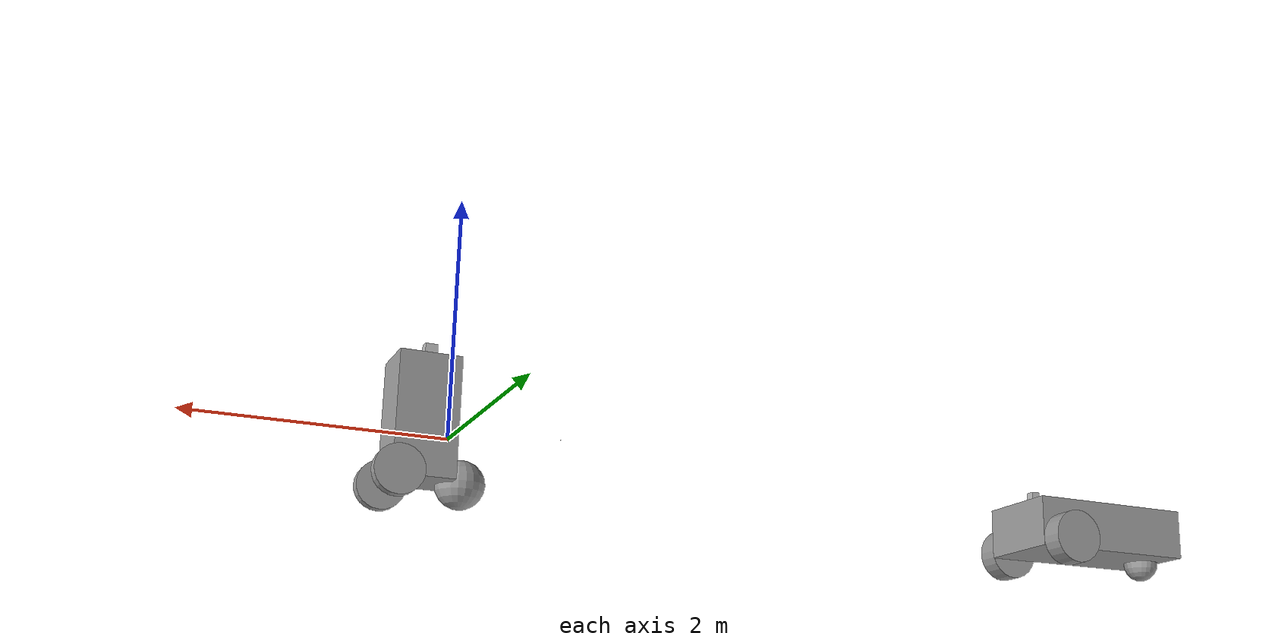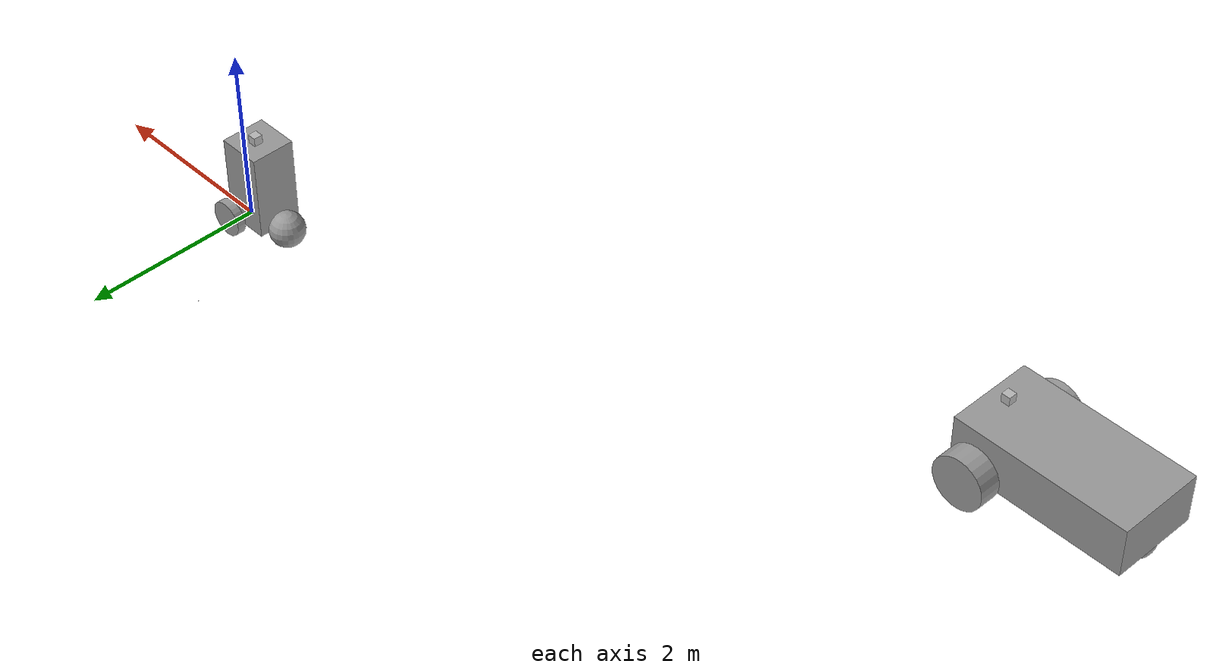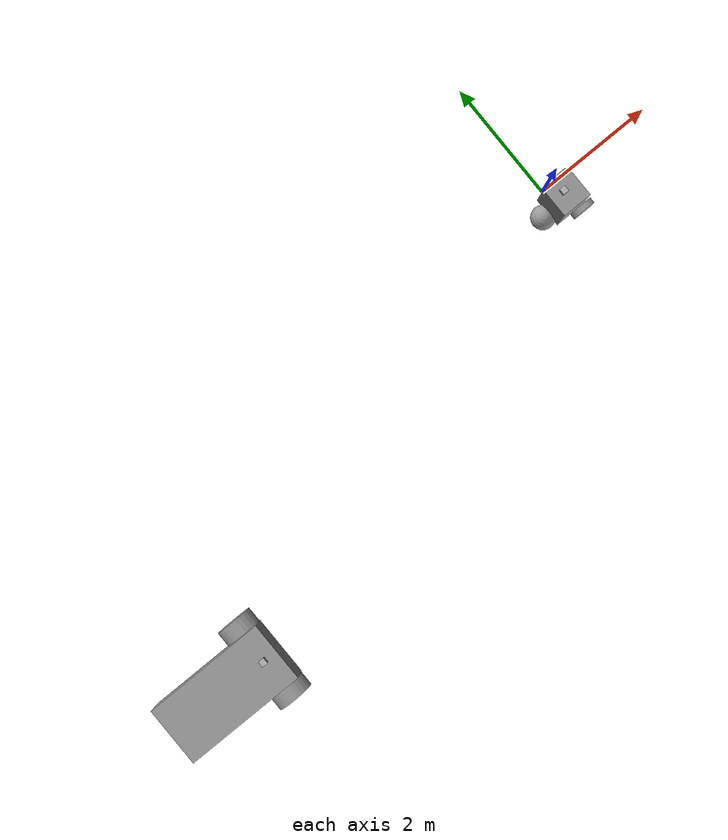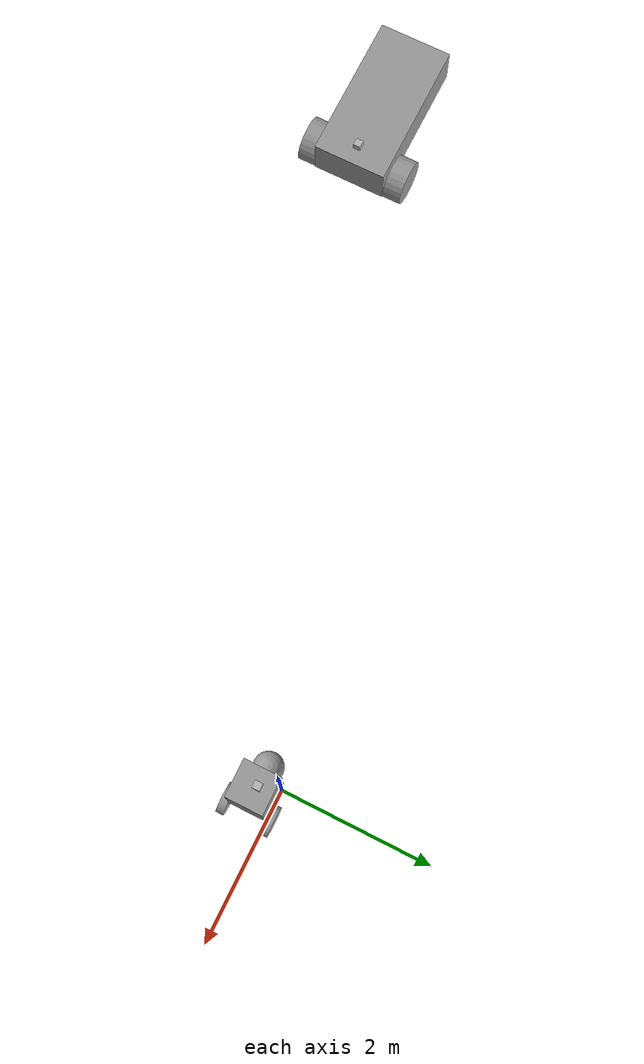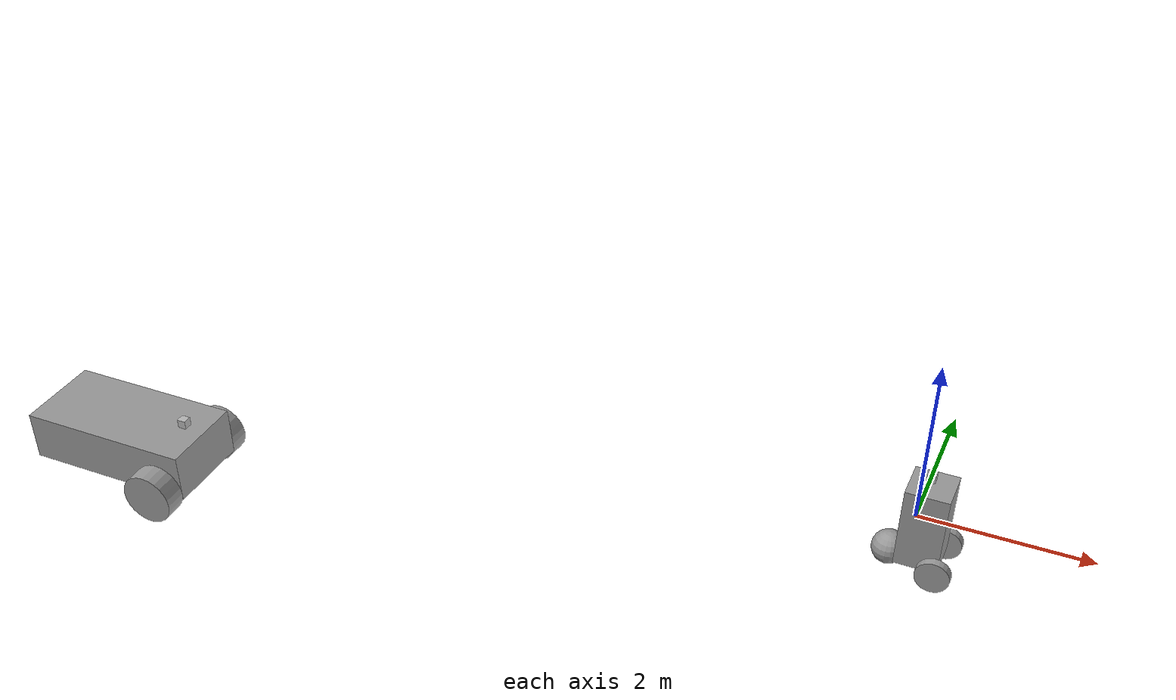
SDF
<?xml version='1.0'?>
<sdf version='1.6'>
  <model name='model'>
    <link name='link_0'>
      <pose frame=''>0.15772 -0.278982 0.2 0 -0 0</pose>
      <inertial>
        <mass>0.5</mass>
        <inertia>
          <ixx>0.166667</ixx>
          <ixy>0</ixy>
          <ixz>0</ixz>
          <iyy>0.166667</iyy>
          <iyz>0</iyz>
          <izz>0.166667</izz>
        </inertia>
        <pose frame=''>0 0 0 0 -0 0</pose>
      </inertial>
      <self_collide>0</self_collide>
      <kinematic>0</kinematic>
      <visual name='visual'>
        <pose frame=''>0 0 0 0 -0 0</pose>
        <geometry>
          <box>
            <size>0.5 0.5 1</size>
          </box>
        </geometry>
        <material>
          <lighting>1</lighting>
          <script>
            <uri>file://media/materials/scripts/gazebo.material</uri>
            <name>Gazebo/Grey</name>
          </script>
          <shader type='pixel'>
            <normal_map>__default__</normal_map>
          </shader>
          <ambient>0.3 0.3 0.3 1</ambient>
          <diffuse>0.7 0.7 0.7 1</diffuse>
          <specular>0.01 0.01 0.01 1</specular>
          <emissive>0 0 0 1</emissive>
        </material>
        <transparency>0</transparency>
        <cast_shadows>1</cast_shadows>
      </visual>
      <collision name='collision'>
        <laser_retro>0</laser_retro>
        <max_contacts>10</max_contacts>
        <pose frame=''>0 0 0 0 -0 0</pose>
        <geometry>
          <box>
            <size>0.5 0.5 1</size>
          </box>
        </geometry>
        <surface>
          <friction>
            <ode>
              <mu>1</mu>
              <mu2>1</mu2>
              <fdir1>0 0 0</fdir1>
              <slip1>0</slip1>
              <slip2>0</slip2>
            </ode>
            <torsional>
              <coefficient>1</coefficient>
              <patch_radius>0</patch_radius>
              <surface_radius>0</surface_radius>
              <use_patch_radius>1</use_patch_radius>
              <ode>
                <slip>0</slip>
              </ode>
            </torsional>
          </friction>
          <bounce>
            <restitution_coefficient>0</restitution_coefficient>
            <threshold>1e+06</threshold>
          </bounce>
          <contact>
            <collide_without_contact>0</collide_without_contact>
            <collide_without_contact_bitmask>1</collide_without_contact_bitmask>
            <collide_bitmask>1</collide_bitmask>
            <ode>
              <soft_cfm>0</soft_cfm>
              <soft_erp>0.2</soft_erp>
              <kp>1e+13</kp>
              <kd>1</kd>
              <max_vel>0.01</max_vel>
              <min_depth>0</min_depth>
            </ode>
            <bullet>
              <split_impulse>1</split_impulse>
              <split_impulse_penetration_threshold>-0.01</split_impulse_penetration_threshold>
              <soft_cfm>0</soft_cfm>
              <soft_erp>0.2</soft_erp>
              <kp>1e+13</kp>
              <kd>1</kd>
            </bullet>
          </contact>
        </surface>
      </collision>
    </link>
    <link name='link_1'>
      <pose frame=''>0.372993 -0.57726 -0.290529 1.5707 -0 0</pose>
      <inertial>
        <mass>1</mass>
        <inertia>
          <ixx>0.145833</ixx>
          <ixy>0</ixy>
          <ixz>0</ixz>
          <iyy>0.145833</iyy>
          <iyz>0</iyz>
          <izz>0.125</izz>
        </inertia>
        <pose frame=''>0 0 0.2 1.5707 -0 0</pose>
      </inertial>
      <self_collide>0</self_collide>
      <kinematic>0</kinematic>
      <visual name='visual'>
        <pose frame=''>0 0 0 0 -0 0</pose>
        <geometry>
          <cylinder>
            <radius>0.2</radius>
            <length>0.1</length>
          </cylinder>
        </geometry>
        <material>
          <lighting>1</lighting>
          <script>
            <uri>file://media/materials/scripts/gazebo.material</uri>
            <name>Gazebo/Grey</name>
          </script>
          <shader type='pixel'>
            <normal_map>__default__</normal_map>
          </shader>
          <ambient>0.3 0.3 0.3 1</ambient>
          <diffuse>0.7 0.7 0.7 1</diffuse>
          <specular>0.01 0.01 0.01 1</specular>
          <emissive>0 0 0 1</emissive>
        </material>
        <transparency>0</transparency>
        <cast_shadows>1</cast_shadows>
      </visual>
      <collision name='collision'>
        <laser_retro>0</laser_retro>
        <max_contacts>10</max_contacts>
        <pose frame=''>0 0 0 0 -0 0</pose>
        <geometry>
          <cylinder>
            <radius>0.2</radius>
            <length>0.1</length>
          </cylinder>
        </geometry>
        <surface>
          <friction>
            <ode>
              <mu>1</mu>
              <mu2>1</mu2>
              <fdir1>0 0 0</fdir1>
              <slip1>0</slip1>
              <slip2>0</slip2>
            </ode>
            <torsional>
              <coefficient>1</coefficient>
              <patch_radius>0</patch_radius>
              <surface_radius>0</surface_radius>
              <use_patch_radius>1</use_patch_radius>
              <ode>
                <slip>0</slip>
              </ode>
            </torsional>
          </friction>
          <bounce>
            <restitution_coefficient>0</restitution_coefficient>
            <threshold>1e+06</threshold>
          </bounce>
          <contact>
            <collide_without_contact>0</collide_without_contact>
            <collide_without_contact_bitmask>1</collide_without_contact_bitmask>
            <collide_bitmask>1</collide_bitmask>
            <ode>
              <soft_cfm>0</soft_cfm>
              <soft_erp>0.2</soft_erp>
              <kp>1e+13</kp>
              <kd>1</kd>
              <max_vel>0.01</max_vel>
              <min_depth>0</min_depth>
            </ode>
            <bullet>
              <split_impulse>1</split_impulse>
              <split_impulse_penetration_threshold>-0.01</split_impulse_penetration_threshold>
              <soft_cfm>0</soft_cfm>
              <soft_erp>0.2</soft_erp>
              <kp>1e+13</kp>
              <kd>1</kd>
            </bullet>
          </contact>
        </surface>
      </collision>
    </link>
    <link name='link_1_clone'>
      <pose frame=''>0.371914 0.022779 -0.283781 1.5707 -0 0</pose>
      <inertial>
        <mass>1</mass>
        <inertia>
          <ixx>0.145833</ixx>
          <ixy>0</ixy>
          <ixz>0</ixz>
          <iyy>0.145833</iyy>
          <iyz>0</iyz>
          <izz>0.125</izz>
        </inertia>
        <pose frame=''>0 0 0.2 1.5707 -0 0</pose>
      </inertial>
      <self_collide>0</self_collide>
      <kinematic>0</kinematic>
      <visual name='visual'>
        <pose frame=''>0 0 0 0 -0 0</pose>
        <geometry>
          <cylinder>
            <radius>0.2</radius>
            <length>0.1</length>
          </cylinder>
        </geometry>
        <material>
          <lighting>1</lighting>
          <script>
            <uri>file://media/materials/scripts/gazebo.material</uri>
            <name>Gazebo/Grey</name>
          </script>
          <shader type='pixel'>
            <normal_map>__default__</normal_map>
          </shader>
          <ambient>0.3 0.3 0.3 1</ambient>
          <diffuse>0.7 0.7 0.7 1</diffuse>
          <specular>0.01 0.01 0.01 1</specular>
          <emissive>0 0 0 1</emissive>
        </material>
        <transparency>0</transparency>
        <cast_shadows>1</cast_shadows>
      </visual>
      <collision name='collision'>
        <laser_retro>0</laser_retro>
        <max_contacts>10</max_contacts>
        <pose frame=''>0 0 0 0 -0 0</pose>
        <geometry>
          <cylinder>
            <radius>0.2</radius>
            <length>0.1</length>
          </cylinder>
        </geometry>
        <surface>
          <friction>
            <ode>
              <mu>1</mu>
              <mu2>1</mu2>
              <fdir1>0 0 0</fdir1>
              <slip1>0</slip1>
              <slip2>0</slip2>
            </ode>
            <torsional>
              <coefficient>1</coefficient>
              <patch_radius>0</patch_radius>
              <surface_radius>0</surface_radius>
              <use_patch_radius>1</use_patch_radius>
              <ode>
                <slip>0</slip>
              </ode>
            </torsional>
          </friction>
          <bounce>
            <restitution_coefficient>0</restitution_coefficient>
            <threshold>1e+06</threshold>
          </bounce>
          <contact>
            <collide_without_contact>0</collide_without_contact>
            <collide_without_contact_bitmask>1</collide_without_contact_bitmask>
            <collide_bitmask>1</collide_bitmask>
            <ode>
              <soft_cfm>0</soft_cfm>
              <soft_erp>0.2</soft_erp>
              <kp>1e+13</kp>
              <kd>1</kd>
              <max_vel>0.01</max_vel>
              <min_depth>0</min_depth>
            </ode>
            <bullet>
              <split_impulse>1</split_impulse>
              <split_impulse_penetration_threshold>-0.01</split_impulse_penetration_threshold>
              <soft_cfm>0</soft_cfm>
              <soft_erp>0.2</soft_erp>
              <kp>1e+13</kp>
              <kd>1</kd>
            </bullet>
          </contact>
        </surface>
      </collision>
    </link>
    <link name='link_3'>
      <pose frame=''>-0.192844 -0.294498 -0.287262 0 -0 0</pose>
      <inertial>
        <mass>1</mass>
        <inertia>
          <ixx>0.1</ixx>
          <ixy>0</ixy>
          <ixz>0</ixz>
          <iyy>0.1</iyy>
          <iyz>0</iyz>
          <izz>0.1</izz>
        </inertia>
        <pose frame=''>0 0 0 0 -0 0</pose>
      </inertial>
      <self_collide>0</self_collide>
      <kinematic>0</kinematic>
      <visual name='visual'>
        <pose frame=''>0 0 0 0 -0 0</pose>
        <geometry>
          <sphere>
            <radius>0.2</radius>
          </sphere>
        </geometry>
        <material>
          <lighting>1</lighting>
          <script>
            <uri>file://media/materials/scripts/gazebo.material</uri>
            <name>Gazebo/Grey</name>
          </script>
          <shader type='pixel'>
            <normal_map>__default__</normal_map>
          </shader>
          <ambient>0.3 0.3 0.3 1</ambient>
          <diffuse>0.7 0.7 0.7 1</diffuse>
          <specular>0.01 0.01 0.01 1</specular>
          <emissive>0 0 0 1</emissive>
        </material>
        <transparency>0</transparency>
        <cast_shadows>1</cast_shadows>
      </visual>
      <collision name='collision'>
        <laser_retro>0</laser_retro>
        <max_contacts>10</max_contacts>
        <pose frame=''>0 0 0 0 -0 0</pose>
        <geometry>
          <sphere>
            <radius>0.2</radius>
          </sphere>
        </geometry>
        <surface>
          <friction>
            <ode>
              <mu>0</mu>
              <mu2>0</mu2>
              <fdir1>0 0 0</fdir1>
              <slip1>1</slip1>
              <slip2>1</slip2>
            </ode>
            <torsional>
              <coefficient>1</coefficient>
              <patch_radius>0</patch_radius>
              <surface_radius>0</surface_radius>
              <use_patch_radius>1</use_patch_radius>
              <ode>
                <slip>0</slip>
              </ode>
            </torsional>
          </friction>
          <bounce>
            <restitution_coefficient>0</restitution_coefficient>
            <threshold>1e+06</threshold>
          </bounce>
          <contact>
            <collide_without_contact>0</collide_without_contact>
            <collide_without_contact_bitmask>1</collide_without_contact_bitmask>
            <collide_bitmask>1</collide_bitmask>
            <ode>
              <soft_cfm>0</soft_cfm>
              <soft_erp>0.2</soft_erp>
              <kp>1e+13</kp>
              <kd>1</kd>
              <max_vel>0.01</max_vel>
              <min_depth>0</min_depth>
            </ode>
            <bullet>
              <split_impulse>1</split_impulse>
              <split_impulse_penetration_threshold>-0.01</split_impulse_penetration_threshold>
              <soft_cfm>0</soft_cfm>
              <soft_erp>0.2</soft_erp>
              <kp>1e+13</kp>
              <kd>1</kd>
            </bullet>
          </contact>
        </surface>
      </collision>
    </link>
    <model name='follower_vehicle'>
      <pose frame=''>-8.3727 -2.83927 0.302602 0 -0 0</pose>
      <link name='chassis'>
        <pose frame=''>-0.151427 -0 0.175 0 -0 0</pose>
        <inertial>
          <mass>1.14395</mass>
          <inertia>
            <ixx>0.126164</ixx>
            <ixy>0</ixy>
            <ixz>0</ixz>
            <iyy>0.416519</iyy>
            <iyz>0</iyz>
            <izz>0.481014</izz>
          </inertia>
          <pose frame=''>0 0 0 0 -0 0</pose>
        </inertial>
        <self_collide>0</self_collide>
        <visual name='visual'>
          <pose frame=''>0 0 0 0 -0 0</pose>
          <geometry>
            <box>
              <size>2.01142 1 0.568726</size>
            </box>
          </geometry>
          <material>
            <script>
              <uri>file://media/materials/scripts/gazebo.material</uri>
              <name>Gazebo/Grey</name>
            </script>
          </material>
          <cast_shadows>1</cast_shadows>
          <transparency>0</transparency>
        </visual>
        <collision name='collision'>
          <pose frame=''>0 0 0 0 -0 0</pose>
          <geometry>
            <box>
              <size>2.01142 1 0.568726</size>
            </box>
          </geometry>
          <surface>
            <friction>
              <ode>
                <mu>1</mu>
                <mu2>1</mu2>
                <fdir1>0 0 0</fdir1>
                <slip1>0</slip1>
                <slip2>0</slip2>
              </ode>
            </friction>
            <bounce>
              <restitution_coefficient>0</restitution_coefficient>
              <threshold>1e+06</threshold>
            </bounce>
            <contact>
              <collide_without_contact>0</collide_without_contact>
              <collide_without_contact_bitmask>1</collide_without_contact_bitmask>
              <collide_bitmask>1</collide_bitmask>
              <ode>
                <soft_cfm>0</soft_cfm>
                <soft_erp>0.2</soft_erp>
                <kp>1e+13</kp>
                <kd>1</kd>
                <max_vel>0.01</max_vel>
                <min_depth>0</min_depth>
              </ode>
            </contact>
          </surface>
        </collision>
      </link>
      <link name='wheel_1'>
        <pose frame=''>0.554283 0.625029 -0.025 1.5707 -0 0</pose>
        <inertial>
          <mass>2</mass>
          <inertia>
            <ixx>0.145833</ixx>
            <ixy>0</ixy>
            <ixz>0</ixz>
            <iyy>0.145833</iyy>
            <iyz>0</iyz>
            <izz>0.125</izz>
          </inertia>
          <pose frame=''>0 0 0 0 -0 0</pose>
        </inertial>
        <self_collide>0</self_collide>
        <visual name='visual'>
          <pose frame=''>0 0 0 0 -0 0</pose>
          <geometry>
            <cylinder>
              <radius>0.3</radius>
              <length>0.25</length>
            </cylinder>
          </geometry>
          <material>
            <script>
              <uri>file://media/materials/scripts/gazebo.material</uri>
              <name>Gazebo/Grey</name>
            </script>
          </material>
          <cast_shadows>1</cast_shadows>
          <transparency>0</transparency>
        </visual>
        <collision name='collision'>
          <pose frame=''>0 0 0 0 -0 0</pose>
          <geometry>
            <cylinder>
              <radius>0.3</radius>
              <length>0.25</length>
            </cylinder>
          </geometry>
          <surface>
            <friction>
              <ode>
                <mu>1</mu>
                <mu2>1</mu2>
                <fdir1>0 0 0</fdir1>
                <slip1>0</slip1>
                <slip2>0</slip2>
              </ode>
            </friction>
            <bounce>
              <restitution_coefficient>0</restitution_coefficient>
              <threshold>1e+06</threshold>
            </bounce>
            <contact>
              <collide_without_contact>0</collide_without_contact>
              <collide_without_contact_bitmask>1</collide_without_contact_bitmask>
              <collide_bitmask>1</collide_bitmask>
              <ode>
                <soft_cfm>0</soft_cfm>
                <soft_erp>0.2</soft_erp>
                <kp>1e+13</kp>
                <kd>1</kd>
                <max_vel>0.01</max_vel>
                <min_depth>0</min_depth>
              </ode>
            </contact>
          </surface>
        </collision>
      </link>
      <link name='wheel_2'>
        <pose frame=''>0.554282 -0.625029 -0.025 1.5707 -0 0</pose>
        <inertial>
          <mass>2</mass>
          <inertia>
            <ixx>0.145833</ixx>
            <ixy>0</ixy>
            <ixz>0</ixz>
            <iyy>0.145833</iyy>
            <iyz>0</iyz>
            <izz>0.125</izz>
          </inertia>
          <pose frame=''>0 0 0 0 -0 0</pose>
        </inertial>
        <self_collide>0</self_collide>
        <visual name='visual'>
          <pose frame=''>0 0 0 0 -0 0</pose>
          <geometry>
            <cylinder>
              <radius>0.3</radius>
              <length>0.25</length>
            </cylinder>
          </geometry>
          <material>
            <script>
              <uri>file://media/materials/scripts/gazebo.material</uri>
              <name>Gazebo/Grey</name>
            </script>
          </material>
          <cast_shadows>1</cast_shadows>
          <transparency>0</transparency>
        </visual>
        <collision name='collision'>
          <pose frame=''>0 0 0 0 -0 0</pose>
          <geometry>
            <cylinder>
              <radius>0.3</radius>
              <length>0.25</length>
            </cylinder>
          </geometry>
          <surface>
            <friction>
              <ode>
                <mu>1</mu>
                <mu2>1</mu2>
                <fdir1>0 0 0</fdir1>
                <slip1>0</slip1>
                <slip2>0</slip2>
              </ode>
            </friction>
            <bounce>
              <restitution_coefficient>0</restitution_coefficient>
              <threshold>1e+06</threshold>
            </bounce>
            <contact>
              <collide_without_contact>0</collide_without_contact>
              <collide_without_contact_bitmask>1</collide_without_contact_bitmask>
              <collide_bitmask>1</collide_bitmask>
              <ode>
                <soft_cfm>0</soft_cfm>
                <soft_erp>0.2</soft_erp>
                <kp>1e+13</kp>
                <kd>1</kd>
                <max_vel>0.01</max_vel>
                <min_depth>0</min_depth>
              </ode>
            </contact>
          </surface>
        </collision>
      </link>
      <link name='caster'>
        <pose frame=''>-0.957138 -0 -0.125 0 -0 0</pose>
        <inertial>
          <mass>1</mass>
          <inertia>
            <ixx>0.1</ixx>
            <ixy>0</ixy>
            <ixz>0</ixz>
            <iyy>0.1</iyy>
            <iyz>0</iyz>
            <izz>0.1</izz>
          </inertia>
          <pose frame=''>0 0 0 0 -0 0</pose>
        </inertial>
        <self_collide>0</self_collide>
        <visual name='visual'>
          <pose frame=''>0 0 0 0 -0 0</pose>
          <geometry>
            <sphere>
              <radius>0.2</radius>
            </sphere>
          </geometry>
          <material>
            <script>
              <uri>file://media/materials/scripts/gazebo.material</uri>
              <name>Gazebo/Grey</name>
            </script>
          </material>
          <cast_shadows>1</cast_shadows>
          <transparency>0</transparency>
        </visual>
        <collision name='collision'>
          <pose frame=''>0 0 0 0 -0 0</pose>
          <geometry>
            <sphere>
              <radius>0.2</radius>
            </sphere>
          </geometry>
          <surface>
            <friction>
              <ode>
                <mu>1</mu>
                <mu2>1</mu2>
                <fdir1>0 0 0</fdir1>
                <slip1>0</slip1>
                <slip2>0</slip2>
              </ode>
            </friction>
            <bounce>
              <restitution_coefficient>0</restitution_coefficient>
              <threshold>1e+06</threshold>
            </bounce>
            <contact>
              <collide_without_contact>0</collide_without_contact>
              <collide_without_contact_bitmask>1</collide_without_contact_bitmask>
              <collide_bitmask>1</collide_bitmask>
              <ode>
                <soft_cfm>0</soft_cfm>
                <soft_erp>0.2</soft_erp>
                <kp>1e+13</kp>
                <kd>1</kd>
                <max_vel>0.01</max_vel>
                <min_depth>0</min_depth>
              </ode>
            </contact>
          </surface>
        </collision>
      </link>
      <model name='depth_camera'>
        <link name='link'>
          <pose frame=''>0.05 0.05 0.05 0 -0 0</pose>
          <inertial>
            <mass>0.1</mass>
            <inertia>
              <ixx>0.000166667</ixx>
              <iyy>0.000166667</iyy>
              <izz>0.000166667</izz>
              <ixy>0</ixy>
              <ixz>0</ixz>
              <iyz>0</iyz>
            </inertia>
          </inertial>
          <collision name='collision'>
            <geometry>
              <box>
                <size>0.1 0.1 0.1</size>
              </box>
            </geometry>
          </collision>
          <visual name='visual'>
            <geometry>
              <box>
                <size>0.1 0.1 0.1</size>
              </box>
            </geometry>
          </visual>
          <sensor name='camera' type='depth'>
            <camera name='depth'>
              <horizontal_fov>1.047</horizontal_fov>
              <image>
                <width>320</width>
                <height>240</height>
              </image>
              <clip>
                <near>0.1</near>
                <far>100</far>
              </clip>
            </camera>
            <always_on>1</always_on>
            <update_rate>30</update_rate>
            <visualize>1</visualize>
          </sensor>
        </link>
        <pose frame=''>0.569632 -0.03223 0.502056 0 -0 0</pose>
      </model>
      <joint name='chassis_wheel_1_revolute' type='revolute'>
        <parent>chassis</parent>
        <child>wheel_1</child>
        <pose frame=''>0 0 0 0 -0 0</pose>
        <axis>
          <xyz>0 0 1</xyz>
          <use_parent_model_frame>0</use_parent_model_frame>
          <limit>
            <lower>-1.79769e+308</lower>
            <upper>1.79769e+308</upper>
            <effort>-1</effort>
            <velocity>-1</velocity>
          </limit>
          <dynamics>
            <spring_reference>0</spring_reference>
            <spring_stiffness>0</spring_stiffness>
            <damping>0</damping>
            <friction>0</friction>
          </dynamics>
        </axis>
        <physics>
          <ode>
            <limit>
              <cfm>0</cfm>
              <erp>0.2</erp>
            </limit>
            <suspension>
              <cfm>0</cfm>
              <erp>0.2</erp>
            </suspension>
          </ode>
        </physics>
      </joint>
      <joint name='chassis_wheel_2_revolute' type='revolute'>
        <parent>chassis</parent>
        <child>wheel_2</child>
        <pose frame=''>0 0 0 0 -0 0</pose>
        <axis>
          <xyz>0 0 1</xyz>
          <use_parent_model_frame>0</use_parent_model_frame>
          <limit>
            <lower>-1.79769e+308</lower>
            <upper>1.79769e+308</upper>
            <effort>-1</effort>
            <velocity>-1</velocity>
          </limit>
          <dynamics>
            <spring_reference>0</spring_reference>
            <spring_stiffness>0</spring_stiffness>
            <damping>0</damping>
            <friction>0</friction>
          </dynamics>
        </axis>
        <physics>
          <ode>
            <limit>
              <cfm>0</cfm>
              <erp>0.2</erp>
            </limit>
            <suspension>
              <cfm>0</cfm>
              <erp>0.2</erp>
            </suspension>
          </ode>
        </physics>
      </joint>
      <joint name='chassis_caster_ball' type='ball'>
        <parent>chassis</parent>
        <child>caster</child>
        <pose frame=''>0 0 0 0 -0 0</pose>
        <physics>
          <ode>
            <limit>
              <cfm>0</cfm>
              <erp>0.2</erp>
            </limit>
            <suspension>
              <cfm>0</cfm>
              <erp>0.2</erp>
            </suspension>
          </ode>
        </physics>
      </joint>
      <joint name='chassis_depth_camera_link_fixed' type='fixed'>
        <parent>chassis</parent>
        <child>depth_camera::link</child>
        <pose frame=''>0 0 0 0 -0 0</pose>
        <physics>
          <ode>
            <limit>
              <cfm>0</cfm>
              <erp>0.2</erp>
            </limit>
            <suspension>
              <cfm>0</cfm>
              <erp>0.2</erp>
            </suspension>
          </ode>
        </physics>
      </joint>
      <static>0</static>
      <allow_auto_disable>1</allow_auto_disable>
      <plugin name='follower' filename='libFollowerPlugin.so'/>
    </model>
    <model name='ball_bearing'>
      <link name='link'>
        <pose frame=''>0 0 0.003 0 -0 0</pose>
        <inertial>
          <mass>0.0011</mass>
          <inertia>
            <ixx>3.96e-09</ixx>
            <ixy>0</ixy>
            <ixz>0</ixz>
            <iyy>3.96e-09</iyy>
            <iyz>0</iyz>
            <izz>3.96e-09</izz>
          </inertia>
        </inertial>
        <collision name='collision'>
          <geometry>
            <sphere>
              <radius>0.003</radius>
            </sphere>
          </geometry>
          <surface>
            <contact>
              <poissons_ratio>0.305</poissons_ratio>
              <elastic_modulus>2e+11</elastic_modulus>
              <ode>
                <kp>100000</kp>
                <kd>100</kd>
                <max_vel>100</max_vel>
                <min_depth>0.001</min_depth>
              </ode>
            </contact>
            <friction>
              <torsional>
                <coefficient>1</coefficient>
                <use_patch_radius>0</use_patch_radius>
                <surface_radius>0.01</surface_radius>
                <ode/>
              </torsional>
              <ode/>
            </friction>
            <bounce/>
          </surface>
          <max_contacts>10</max_contacts>
        </collision>
        <visual name='visual'>
          <geometry>
            <sphere>
              <radius>0.003</radius>
            </sphere>
          </geometry>
          <material>
            <script>
              <uri>file://media/materials/scripts/gazebo.material</uri>
              <name>Gazebo/Grey</name>
            </script>
          </material>
        </visual>
        <velocity_decay>
          <linear>0</linear>
          <angular>0.005</angular>
        </velocity_decay>
        <self_collide>0</self_collide>
        <kinematic>0</kinematic>
      </link>
      <pose frame=''>-0.532804 1.12613 -0.2 0 -0 0</pose>
    </model>
    <model name='depth_camera'>
      <link name='link'>
        <pose frame=''>0 0 0.05 0 -0 0</pose>
        <inertial>
          <mass>0.1</mass>
          <inertia>
            <ixx>0.000166667</ixx>
            <iyy>0.000166667</iyy>
            <izz>0.000166667</izz>
            <ixy>0</ixy>
            <ixz>0</ixz>
            <iyz>0</iyz>
          </inertia>
        </inertial>
        <collision name='collision'>
          <geometry>
            <box>
              <size>0.1 0.1 0.1</size>
            </box>
          </geometry>
          <max_contacts>10</max_contacts>
          <surface>
            <contact>
              <ode/>
            </contact>
            <bounce/>
            <friction>
              <torsional>
                <ode/>
              </torsional>
              <ode/>
            </friction>
          </surface>
        </collision>
        <visual name='visual'>
          <geometry>
            <box>
              <size>0.1 0.1 0.1</size>
            </box>
          </geometry>
        </visual>
        <sensor name='camera' type='depth'>
          <camera name='__default__'>
            <horizontal_fov>1.047</horizontal_fov>
            <image>
              <width>320</width>
              <height>240</height>
            </image>
            <clip>
              <near>0.1</near>
              <far>100</far>
            </clip>
          </camera>
          <always_on>1</always_on>
          <update_rate>30</update_rate>
          <visualize>1</visualize>
        </sensor>
        <self_collide>0</self_collide>
        <kinematic>0</kinematic>
      </link>
      <pose frame=''>0.126933 -0.232851 0.720519 0 -0 0</pose>
    </model>
    <joint name='link_0_JOINT_2' type='revolute'>
      <parent>link_0</parent>
      <child>link_1</child>
      <pose frame=''>0 0 0 0 -0 0</pose>
      <axis>
        <xyz>0 0 1</xyz>
        <use_parent_model_frame>0</use_parent_model_frame>
        <limit>
          <lower>-1.79769e+308</lower>
          <upper>1.79769e+308</upper>
          <effort>-1</effort>
          <velocity>-1</velocity>
        </limit>
        <dynamics>
          <spring_reference>0</spring_reference>
          <spring_stiffness>0</spring_stiffness>
          <damping>0</damping>
          <friction>0</friction>
        </dynamics>
      </axis>
      <physics>
        <ode>
          <limit>
            <cfm>0</cfm>
            <erp>0.2</erp>
          </limit>
          <suspension>
            <cfm>0</cfm>
            <erp>0.2</erp>
          </suspension>
        </ode>
      </physics>
    </joint>
    <joint name='link_0_JOINT_3' type='revolute'>
      <parent>link_0</parent>
      <child>link_1_clone</child>
      <pose frame=''>0 0 0 0 -0 0</pose>
      <axis>
        <xyz>0 0 1</xyz>
        <use_parent_model_frame>0</use_parent_model_frame>
        <limit>
          <lower>-1.79769e+308</lower>
          <upper>1.79769e+308</upper>
          <effort>-1</effort>
          <velocity>-1</velocity>
        </limit>
        <dynamics>
          <spring_reference>0</spring_reference>
          <spring_stiffness>0</spring_stiffness>
          <damping>0</damping>
          <friction>0</friction>
        </dynamics>
      </axis>
      <physics>
        <ode>
          <limit>
            <cfm>0</cfm>
            <erp>0.2</erp>
          </limit>
          <suspension>
            <cfm>0</cfm>
            <erp>0.2</erp>
          </suspension>
        </ode>
      </physics>
    </joint>
    <joint name='link_0_JOINT_4' type='ball'>
      <parent>link_0</parent>
      <child>link_3</child>
      <pose frame=''>0 0 0 0 -0 0</pose>
      <physics>
        <ode>
          <limit>
            <cfm>0</cfm>
            <erp>0.2</erp>
          </limit>
          <suspension>
            <cfm>0</cfm>
            <erp>0.2</erp>
          </suspension>
        </ode>
      </physics>
    </joint>
    <joint name='link_0_JOINT_5' type='fixed'>
      <parent>link_0</parent>
      <child>depth_camera::link</child>
      <pose frame=''>0 0 0 0 -0 0</pose>
      <physics>
        <ode>
          <limit>
            <cfm>0</cfm>
            <erp>0.2</erp>
          </limit>
          <suspension>
            <cfm>0</cfm>
            <erp>0.2</erp>
          </suspension>
        </ode>
      </physics>
    </joint>
    <static>0</static>
    <allow_auto_disable>1</allow_auto_disable>
    <plugin name='follower' filename='libFollowerPlugin.so'/>
  </model>
</sdf>
